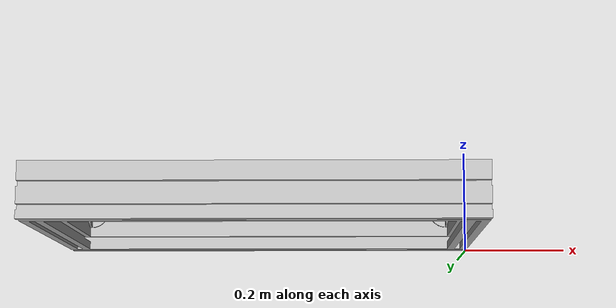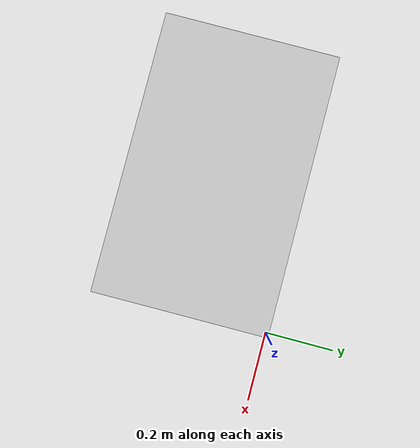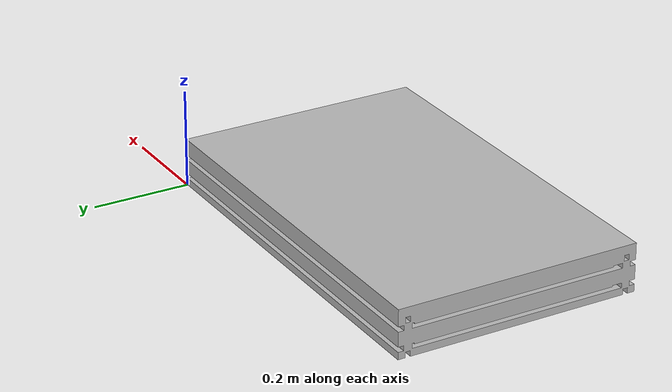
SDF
<?xml version="1.0" ?>
<sdf version="1.5">
  <model name="platform_800x500x99_90degree">
    <static>true</static>
    <link name="link">
      <pose>0 0 0 0 0 0</pose>
      <collision name="collision">
        <geometry>
          <mesh>
            <uri>model://platform_800x500x99_90degree/meshes/platform_800x500x99_90degree.dae</uri>
          </mesh>
        </geometry>
      </collision>
      <visual name="visual">
        <geometry>
          <mesh>
            <uri>model://platform_800x500x99_90degree/meshes/platform_800x500x99_90degree.dae</uri>
          </mesh>
        </geometry>
      </visual>
    </link>
  </model>
</sdf>
